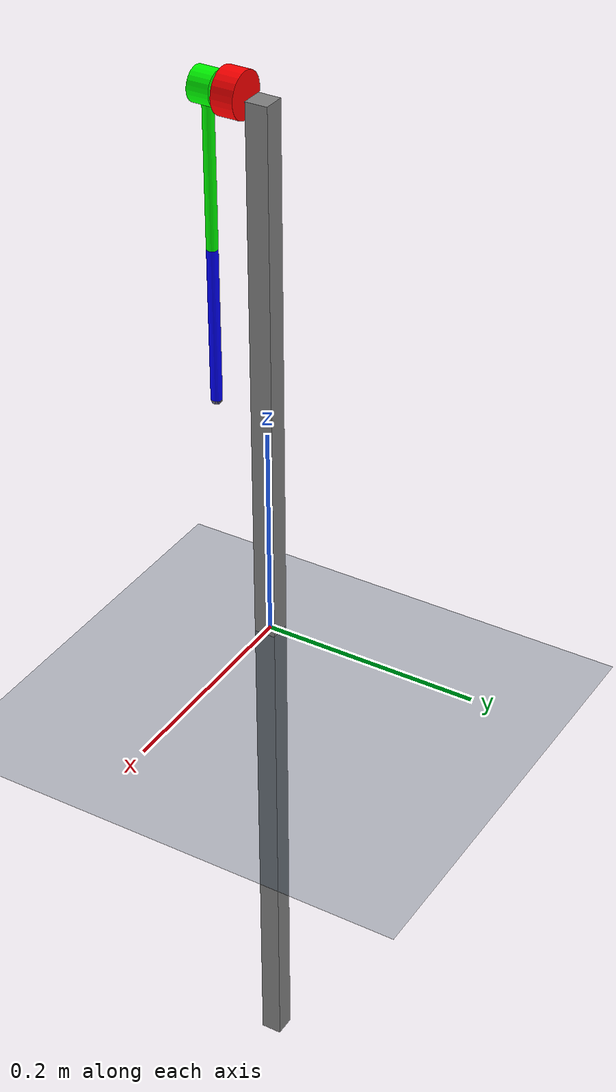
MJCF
<mujoco model="leg">
    <!-- NOTE - IT IS RECOMMENDED TO USE SIM_ENV.INIT(PHYSICS_TIMESTEP) TO ALTER TIMESTEP INSTEAD OF CHANGING THIS XML FILE -->
    <option timestep="0.00025"/>

    <asset>
        <texture name="texplane" type="2d" builtin="checker" rgb1=".2 .3 .4" rgb2=".1 0.15 0.2" width="512" height="512" mark="cross" markrgb=".8 .8 .8"/>
        <material name="matplane" texture="texplane" texrepeat="4 4" texuniform="true"/>
    </asset>

    <worldbody>
        <geom name="ground" pos="0 0 0" size="0 0 .25" type="plane" material="matplane"/>
        <geom name="rod" type="box" pos="0 0 0" size="0.01 0.01 0.5"/>
        <light directional="false" diffuse=".2 .2 .2" specular="0 0 0" pos="0 0 5" dir="0 0 -1" castshadow="false"/>
        <light directional="false" diffuse=".8 .8 .8" specular="0.3 0.3 0.3" pos="0 0 4.0" dir="0 0 -1"/>

        <body name="base" pos="0 -0.025 0.5">
            <geom type="cylinder" pos="0 0 0" size="0.02 0.01" zaxis="0 1 0" rgba="1 0 0 1"/>
            <inertial pos="0 0 0" mass="0.59" diaginertia="0.000078 0.000078 0.000078"/>
            <joint name="slider" type="slide" axis="0 0 1" frictionloss="0.3" damping="0.3" ref="0.5"/>

            <body name="upperleg" pos="0 -0.025 0">
                <geom type="cylinder" pos="0 0 0" size="0.015 0.01" zaxis="0 1 0" rgba="0 1 0 1"/>
                <geom name="upperleg-limb" type="capsule" pos="0 0 -0.07" size="0.005 0.07 0" rgba="0 1 0 1"/>
                <inertial pos="0 0 -0.049" mass="0.09" diaginertia="0.0003 0.0003 0.000001"/>
                <joint name="hip" type="hinge" axis="0 -1 0" frictionloss="0.4" damping="0.02" ref="-90" armature="2.2e-6"/>
                <site name="hip-center" pos="0 0 0"/>

                <body name="lowerleg" pos="0 0 -0.14">
                    <geom name="lowerleg-limb" type="capsule" pos="0 0 -0.07" size="0.005 0.07 0" rgba="0 0 1 1"/>
                    <inertial pos="0 0 -0.08" mass="0.05" diaginertia="0.00015 0.00015 0.0000005"/>
                    <joint name="knee" type="hinge" axis="0 -1 0" frictionloss="0.4" damping="0.025" ref="0" armature="1.97e-6"/>
                    <site name="knee-center" pos="0 0 0"/>
                    <site name="foot-center" pos="0 0 -0.14"/>
                </body>
            </body>
        </body>
    </worldbody>

    <sensor>
        <force name="base-to-slider" site="hip-center"/>
    </sensor>

    <contact>
        <!-- NOTE - IT IS RECOMMENDED TO USE SIM_ENV.SET_... TO ALTER MODEL INSTEAD OF CHANGING THIS XML FILE -->

        <!-- USE THIS FOR COMPLIANCE -->

        <!-- USE THIS to match omega on average, but without the oscillations -->

        <!-- USE THIS FOR NO COMPLIANCE -->

        <!-- BEST CURRENT MODEL -->
        <pair name="ground-contact" geom1="ground" geom2="lowerleg-limb" friction="0.7 0.7" solref="0.015 0.18" solimp="0.01 0.95 0.001"/>
    </contact>

    <actuator>
        <motor name="torquehip" joint="hip" gear="1" ctrlrange="-1 1" ctrllimited="false"/>
    </actuator>
    <actuator>
        <motor name="torqueknee" joint="knee" gear="1" ctrlrange="-1 1" ctrllimited="false"/>
    </actuator>
</mujoco>
